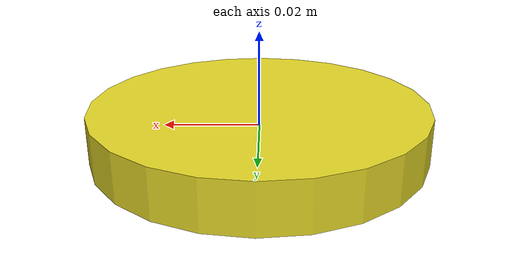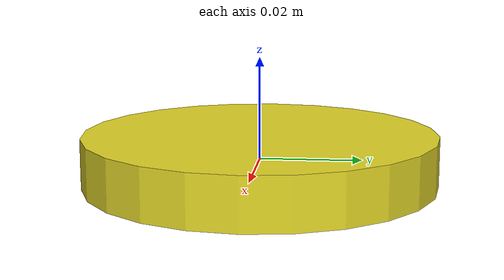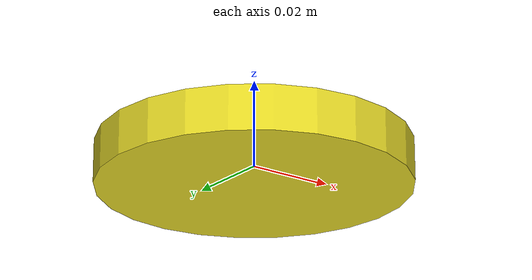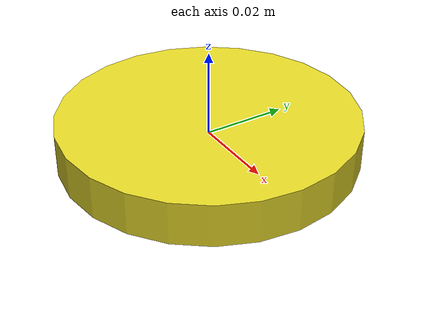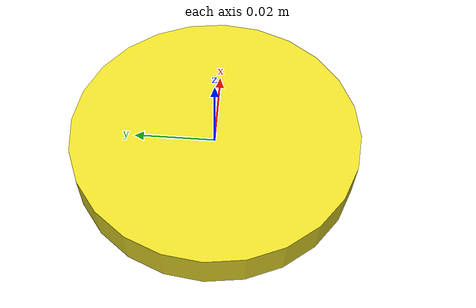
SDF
<?xml version='1.0'?>
<sdf version='1.6'>
  <model name='lidar'>
    <link name='link_lidar'>

      <pose>0 0 0 0 0 0</pose>

      <visual name='visual'>
        <geometry>
          <cylinder>
            <radius>0.035</radius>
            <length>0.010</length>
          </cylinder>
        </geometry>
        <material>
          <script>
            <uri>file://media/materials/scripts/gazebo.material</uri>
            <name>Gazebo/Yellow</name>
          </script>
        </material>
      </visual>

      <inertial>
        <mass>0.1</mass>
        <inertia>
          <ixx>0.001</ixx>
          <ixy>0</ixy>
          <ixz>0</ixz>
          <iyy>0.001</iyy>
          <iyz>0</iyz>
          <izz>0.001</izz>
        </inertia>
      </inertial>

      <collision name='collision'>
        <geometry>
          <cylinder>
            <radius>0.001</radius>
            <length>0.005</length>
          </cylinder>
        </geometry>
      </collision>

      <!-- sensor conf -->
      <sensor type='ray' name='lidar_sensor'>
        <pose>0 0 0.00025 0 0 0</pose>
        <visualize>true</visualize>
        <update_rate>20</update_rate>
        <ray>
          <scan>
            <horizontal>
              <samples>360</samples>       <!-- 360 points per scan -->
              <resolution>1.0</resolution>
              <min_angle>-2.094395</min_angle>
              <max_angle>2.094395</max_angle>
            </horizontal>
            <vertical>
              <samples>1</samples>         <!-- 2D LiDAR -->
              <resolution>1.0</resolution>
              <min_angle>0</min_angle>
              <max_angle>0</max_angle>
            </vertical>
          </scan>
          <range>
            <min>0.15</min>               <!-- 15cm min range -->
            <max>1.0</max>               <!-- 12m max range but put 1 for better viz -->
            <resolution>0.03</resolution>
          </range>
        </ray>

        <!-- ROS Plugin for Laser scan -->
        <plugin name='lidar_plugin' filename='libgazebo_ros_laser.so'>
          <topicName>/scan</topicName>
          <frameName>lidar_link</frameName>
        </plugin>
      </sensor>
    </link>
  </model>
</sdf>
